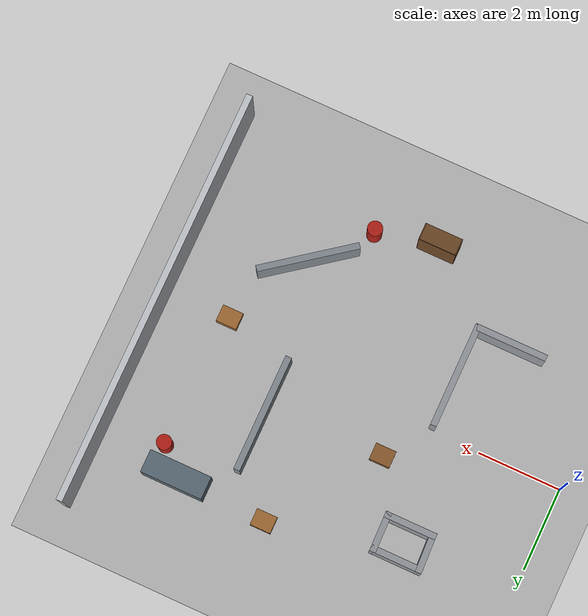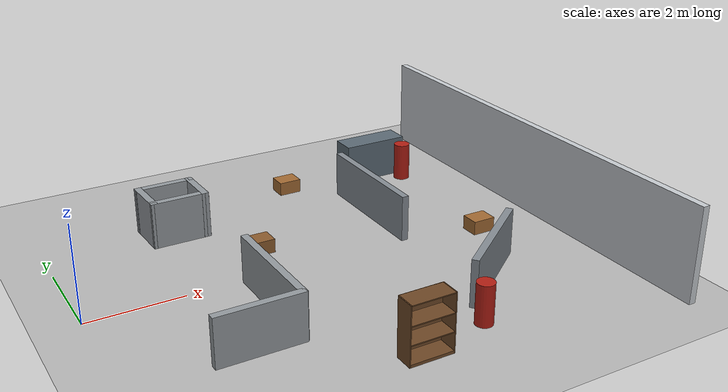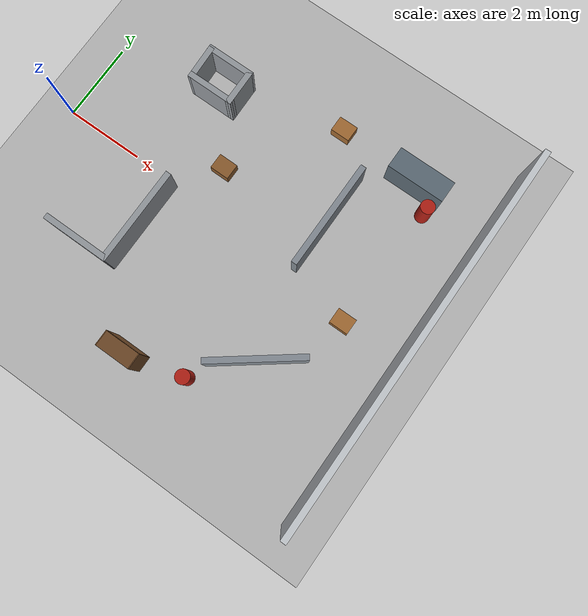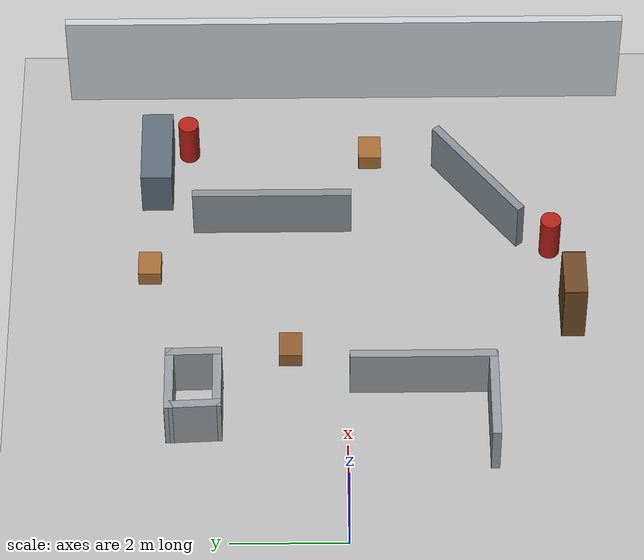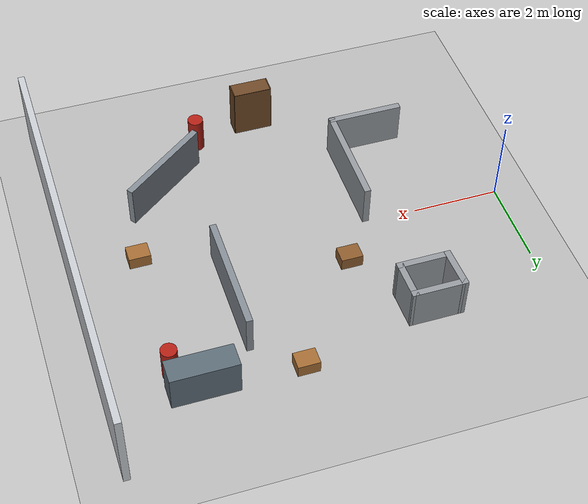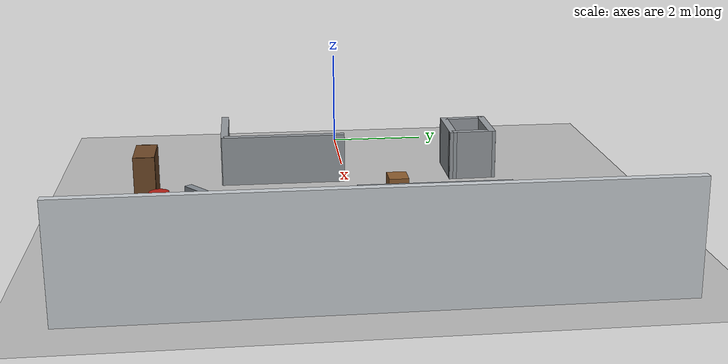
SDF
<sdf version="1.6">
 <world name="default">
  <model name="ground_plane">
   <static>true</static>
   <link name="link">
    <collision name="collision">
     <geometry><plane><normal>0 0 1</normal><size>100 100</size></plane></geometry>
     <surface><friction><ode><mu>100</mu><mu2>50</mu2></ode></friction></surface>
    </collision>
    <visual name="visual">
     <cast_shadows>false</cast_shadows>
     <geometry><plane><normal>0 0 1</normal><size>100 100</size></plane></geometry>
     <material><ambient>0.72 0.72 0.72 1</ambient><diffuse>0.72 0.72 0.72 1</diffuse></material>
    </visual>
   </link>
  </model>
  <model name="boundary_wall_east">
   <static>true</static>
   <pose>10 0 1 0 0 -1.5707963</pose>
   <link name="link">
    <collision name="collision">
     <geometry><box><size>10 0.15 2</size></box></geometry>
     <surface>
      <friction>
       <ode><mu>1</mu><mu2>1</mu2><fdir1>0 0 0</fdir1><slip1>0</slip1><slip2>0</slip2></ode>
       <torsional>
        <coefficient>1</coefficient>
        <patch_radius>0</patch_radius>
        <surface_radius>0</surface_radius>
        <use_patch_radius>1</use_patch_radius>
        <ode><slip>0</slip></ode>
       </torsional>
      </friction>
      <bounce><restitution_coefficient>0</restitution_coefficient><threshold>1e+06</threshold></bounce>
      <contact>
       <collide_without_contact>0</collide_without_contact>
       <collide_without_contact_bitmask>1</collide_without_contact_bitmask>
       <collide_bitmask>1</collide_bitmask>
       <ode>
        <soft_cfm>0</soft_cfm>
        <soft_erp>0.2</soft_erp>
        <kp>1e+13</kp>
        <kd>1</kd>
        <max_vel>0.01</max_vel>
        <min_depth>0</min_depth>
       </ode>
       <bullet>
        <split_impulse>1</split_impulse>
        <split_impulse_penetration_threshold>-0.01</split_impulse_penetration_threshold>
        <soft_cfm>0</soft_cfm>
        <soft_erp>0.2</soft_erp>
        <kp>1e+13</kp>
        <kd>1</kd>
       </bullet>
      </contact>
     </surface>
    </collision>
    <visual name="visual">
     <geometry><box><size>10 0.15 2</size></box></geometry>
     <material><ambient>0.78 0.8 0.82 1</ambient><diffuse>0.78 0.8 0.82 1</diffuse></material>
    </visual>
   </link>
  </model>
  <model name="bookshelf_link_back">
   <static>true</static>
   <pose>4.78412 -3.73336 0.6 0 0 0</pose>
   <link name="link">
    <collision name="collision">
     <geometry><box><size>0.9 0.01 1.2</size></box></geometry>
     <surface>
      <friction>
       <ode><mu>1</mu><mu2>1</mu2><fdir1>0 0 0</fdir1><slip1>0</slip1><slip2>0</slip2></ode>
       <torsional>
        <coefficient>1</coefficient>
        <patch_radius>0</patch_radius>
        <surface_radius>0</surface_radius>
        <use_patch_radius>1</use_patch_radius>
        <ode><slip>0</slip></ode>
       </torsional>
      </friction>
      <bounce><restitution_coefficient>0</restitution_coefficient><threshold>1e+06</threshold></bounce>
      <contact>
       <collide_without_contact>0</collide_without_contact>
       <collide_without_contact_bitmask>1</collide_without_contact_bitmask>
       <collide_bitmask>1</collide_bitmask>
       <ode>
        <soft_cfm>0</soft_cfm>
        <soft_erp>0.2</soft_erp>
        <kp>1e+13</kp>
        <kd>1</kd>
        <max_vel>0.01</max_vel>
        <min_depth>0</min_depth>
       </ode>
       <bullet>
        <split_impulse>1</split_impulse>
        <split_impulse_penetration_threshold>-0.01</split_impulse_penetration_threshold>
        <soft_cfm>0</soft_cfm>
        <soft_erp>0.2</soft_erp>
        <kp>1e+13</kp>
        <kd>1</kd>
       </bullet>
      </contact>
     </surface>
    </collision>
    <visual name="visual">
     <geometry><box><size>0.9 0.01 1.2</size></box></geometry>
     <material><ambient>0.43 0.28 0.15 1</ambient><diffuse>0.43 0.28 0.15 1</diffuse></material>
    </visual>
   </link>
  </model>
  <model name="bookshelf_link_bottom">
   <static>true</static>
   <pose>4.78412 -3.93336 0.03 0 0 0</pose>
   <link name="link">
    <collision name="collision">
     <geometry><box><size>0.88 0.4 0.06</size></box></geometry>
     <surface>
      <friction>
       <ode><mu>1</mu><mu2>1</mu2><fdir1>0 0 0</fdir1><slip1>0</slip1><slip2>0</slip2></ode>
       <torsional>
        <coefficient>1</coefficient>
        <patch_radius>0</patch_radius>
        <surface_radius>0</surface_radius>
        <use_patch_radius>1</use_patch_radius>
        <ode><slip>0</slip></ode>
       </torsional>
      </friction>
      <bounce><restitution_coefficient>0</restitution_coefficient><threshold>1e+06</threshold></bounce>
      <contact>
       <collide_without_contact>0</collide_without_contact>
       <collide_without_contact_bitmask>1</collide_without_contact_bitmask>
       <collide_bitmask>1</collide_bitmask>
       <ode>
        <soft_cfm>0</soft_cfm>
        <soft_erp>0.2</soft_erp>
        <kp>1e+13</kp>
        <kd>1</kd>
        <max_vel>0.01</max_vel>
        <min_depth>0</min_depth>
       </ode>
       <bullet>
        <split_impulse>1</split_impulse>
        <split_impulse_penetration_threshold>-0.01</split_impulse_penetration_threshold>
        <soft_cfm>0</soft_cfm>
        <soft_erp>0.2</soft_erp>
        <kp>1e+13</kp>
        <kd>1</kd>
       </bullet>
      </contact>
     </surface>
    </collision>
    <visual name="visual">
     <geometry><box><size>0.88 0.4 0.06</size></box></geometry>
     <material><ambient>0.43 0.28 0.15 1</ambient><diffuse>0.43 0.28 0.15 1</diffuse></material>
    </visual>
   </link>
  </model>
  <model name="bookshelf_link_high_shelf">
   <static>true</static>
   <pose>4.78412 -3.93336 0.8 0 0 0</pose>
   <link name="link">
    <collision name="collision">
     <geometry><box><size>0.88 0.4 0.02</size></box></geometry>
     <surface>
      <friction>
       <ode><mu>1</mu><mu2>1</mu2><fdir1>0 0 0</fdir1><slip1>0</slip1><slip2>0</slip2></ode>
       <torsional>
        <coefficient>1</coefficient>
        <patch_radius>0</patch_radius>
        <surface_radius>0</surface_radius>
        <use_patch_radius>1</use_patch_radius>
        <ode><slip>0</slip></ode>
       </torsional>
      </friction>
      <bounce><restitution_coefficient>0</restitution_coefficient><threshold>1e+06</threshold></bounce>
      <contact>
       <collide_without_contact>0</collide_without_contact>
       <collide_without_contact_bitmask>1</collide_without_contact_bitmask>
       <collide_bitmask>1</collide_bitmask>
       <ode>
        <soft_cfm>0</soft_cfm>
        <soft_erp>0.2</soft_erp>
        <kp>1e+13</kp>
        <kd>1</kd>
        <max_vel>0.01</max_vel>
        <min_depth>0</min_depth>
       </ode>
       <bullet>
        <split_impulse>1</split_impulse>
        <split_impulse_penetration_threshold>-0.01</split_impulse_penetration_threshold>
        <soft_cfm>0</soft_cfm>
        <soft_erp>0.2</soft_erp>
        <kp>1e+13</kp>
        <kd>1</kd>
       </bullet>
      </contact>
     </surface>
    </collision>
    <visual name="visual">
     <geometry><box><size>0.88 0.4 0.02</size></box></geometry>
     <material><ambient>0.43 0.28 0.15 1</ambient><diffuse>0.43 0.28 0.15 1</diffuse></material>
    </visual>
   </link>
  </model>
  <model name="bookshelf_link_left_side">
   <static>true</static>
   <pose>5.23412 -3.93336 0.6 0 0 0</pose>
   <link name="link">
    <collision name="collision">
     <geometry><box><size>0.02 0.4 1.2</size></box></geometry>
     <surface>
      <friction>
       <ode><mu>1</mu><mu2>1</mu2><fdir1>0 0 0</fdir1><slip1>0</slip1><slip2>0</slip2></ode>
       <torsional>
        <coefficient>1</coefficient>
        <patch_radius>0</patch_radius>
        <surface_radius>0</surface_radius>
        <use_patch_radius>1</use_patch_radius>
        <ode><slip>0</slip></ode>
       </torsional>
      </friction>
      <bounce><restitution_coefficient>0</restitution_coefficient><threshold>1e+06</threshold></bounce>
      <contact>
       <collide_without_contact>0</collide_without_contact>
       <collide_without_contact_bitmask>1</collide_without_contact_bitmask>
       <collide_bitmask>1</collide_bitmask>
       <ode>
        <soft_cfm>0</soft_cfm>
        <soft_erp>0.2</soft_erp>
        <kp>1e+13</kp>
        <kd>1</kd>
        <max_vel>0.01</max_vel>
        <min_depth>0</min_depth>
       </ode>
       <bullet>
        <split_impulse>1</split_impulse>
        <split_impulse_penetration_threshold>-0.01</split_impulse_penetration_threshold>
        <soft_cfm>0</soft_cfm>
        <soft_erp>0.2</soft_erp>
        <kp>1e+13</kp>
        <kd>1</kd>
       </bullet>
      </contact>
     </surface>
    </collision>
    <visual name="visual">
     <geometry><box><size>0.02 0.4 1.2</size></box></geometry>
     <material><ambient>0.43 0.28 0.15 1</ambient><diffuse>0.43 0.28 0.15 1</diffuse></material>
    </visual>
   </link>
  </model>
  <model name="bookshelf_link_low_shelf">
   <static>true</static>
   <pose>4.78412 -3.93336 0.43 0 0 0</pose>
   <link name="link">
    <collision name="collision">
     <geometry><box><size>0.88 0.4 0.02</size></box></geometry>
     <surface>
      <friction>
       <ode><mu>1</mu><mu2>1</mu2><fdir1>0 0 0</fdir1><slip1>0</slip1><slip2>0</slip2></ode>
       <torsional>
        <coefficient>1</coefficient>
        <patch_radius>0</patch_radius>
        <surface_radius>0</surface_radius>
        <use_patch_radius>1</use_patch_radius>
        <ode><slip>0</slip></ode>
       </torsional>
      </friction>
      <bounce><restitution_coefficient>0</restitution_coefficient><threshold>1e+06</threshold></bounce>
      <contact>
       <collide_without_contact>0</collide_without_contact>
       <collide_without_contact_bitmask>1</collide_without_contact_bitmask>
       <collide_bitmask>1</collide_bitmask>
       <ode>
        <soft_cfm>0</soft_cfm>
        <soft_erp>0.2</soft_erp>
        <kp>1e+13</kp>
        <kd>1</kd>
        <max_vel>0.01</max_vel>
        <min_depth>0</min_depth>
       </ode>
       <bullet>
        <split_impulse>1</split_impulse>
        <split_impulse_penetration_threshold>-0.01</split_impulse_penetration_threshold>
        <soft_cfm>0</soft_cfm>
        <soft_erp>0.2</soft_erp>
        <kp>1e+13</kp>
        <kd>1</kd>
       </bullet>
      </contact>
     </surface>
    </collision>
    <visual name="visual">
     <geometry><box><size>0.88 0.4 0.02</size></box></geometry>
     <material><ambient>0.43 0.28 0.15 1</ambient><diffuse>0.43 0.28 0.15 1</diffuse></material>
    </visual>
   </link>
  </model>
  <model name="bookshelf_link_right_side">
   <static>true</static>
   <pose>4.33412 -3.93336 0.6 0 0 0</pose>
   <link name="link">
    <collision name="collision">
     <geometry><box><size>0.02 0.4 1.2</size></box></geometry>
     <surface>
      <friction>
       <ode><mu>1</mu><mu2>1</mu2><fdir1>0 0 0</fdir1><slip1>0</slip1><slip2>0</slip2></ode>
       <torsional>
        <coefficient>1</coefficient>
        <patch_radius>0</patch_radius>
        <surface_radius>0</surface_radius>
        <use_patch_radius>1</use_patch_radius>
        <ode><slip>0</slip></ode>
       </torsional>
      </friction>
      <bounce><restitution_coefficient>0</restitution_coefficient><threshold>1e+06</threshold></bounce>
      <contact>
       <collide_without_contact>0</collide_without_contact>
       <collide_without_contact_bitmask>1</collide_without_contact_bitmask>
       <collide_bitmask>1</collide_bitmask>
       <ode>
        <soft_cfm>0</soft_cfm>
        <soft_erp>0.2</soft_erp>
        <kp>1e+13</kp>
        <kd>1</kd>
        <max_vel>0.01</max_vel>
        <min_depth>0</min_depth>
       </ode>
       <bullet>
        <split_impulse>1</split_impulse>
        <split_impulse_penetration_threshold>-0.01</split_impulse_penetration_threshold>
        <soft_cfm>0</soft_cfm>
        <soft_erp>0.2</soft_erp>
        <kp>1e+13</kp>
        <kd>1</kd>
       </bullet>
      </contact>
     </surface>
    </collision>
    <visual name="visual">
     <geometry><box><size>0.02 0.4 1.2</size></box></geometry>
     <material><ambient>0.43 0.28 0.15 1</ambient><diffuse>0.43 0.28 0.15 1</diffuse></material>
    </visual>
   </link>
  </model>
  <model name="bookshelf_link_top">
   <static>true</static>
   <pose>4.78412 -3.93336 1.19 0 0 0</pose>
   <link name="link">
    <collision name="collision">
     <geometry><box><size>0.88 0.4 0.02</size></box></geometry>
     <surface>
      <friction>
       <ode><mu>1</mu><mu2>1</mu2><fdir1>0 0 0</fdir1><slip1>0</slip1><slip2>0</slip2></ode>
       <torsional>
        <coefficient>1</coefficient>
        <patch_radius>0</patch_radius>
        <surface_radius>0</surface_radius>
        <use_patch_radius>1</use_patch_radius>
        <ode><slip>0</slip></ode>
       </torsional>
      </friction>
      <bounce><restitution_coefficient>0</restitution_coefficient><threshold>1e+06</threshold></bounce>
      <contact>
       <collide_without_contact>0</collide_without_contact>
       <collide_without_contact_bitmask>1</collide_without_contact_bitmask>
       <collide_bitmask>1</collide_bitmask>
       <ode>
        <soft_cfm>0</soft_cfm>
        <soft_erp>0.2</soft_erp>
        <kp>1e+13</kp>
        <kd>1</kd>
        <max_vel>0.01</max_vel>
        <min_depth>0</min_depth>
       </ode>
       <bullet>
        <split_impulse>1</split_impulse>
        <split_impulse_penetration_threshold>-0.01</split_impulse_penetration_threshold>
        <soft_cfm>0</soft_cfm>
        <soft_erp>0.2</soft_erp>
        <kp>1e+13</kp>
        <kd>1</kd>
       </bullet>
      </contact>
     </surface>
    </collision>
    <visual name="visual">
     <geometry><box><size>0.88 0.4 0.02</size></box></geometry>
     <material><ambient>0.43 0.28 0.15 1</ambient><diffuse>0.43 0.28 0.15 1</diffuse></material>
    </visual>
   </link>
  </model>
  <model name="box_Wall_15_Wall_15_Collision">
   <static>true</static>
   <pose>2.72456 3.02888 0.5 0 0 0</pose>
   <link name="link">
    <collision name="collision">
     <geometry><box><size>1.2678 0.15 1</size></box></geometry>
     <surface>
      <friction>
       <ode><mu>1</mu><mu2>1</mu2><fdir1>0 0 0</fdir1><slip1>0</slip1><slip2>0</slip2></ode>
       <torsional>
        <coefficient>1</coefficient>
        <patch_radius>0</patch_radius>
        <surface_radius>0</surface_radius>
        <use_patch_radius>1</use_patch_radius>
        <ode><slip>0</slip></ode>
       </torsional>
      </friction>
      <bounce><restitution_coefficient>0</restitution_coefficient><threshold>1e+06</threshold></bounce>
      <contact>
       <collide_without_contact>0</collide_without_contact>
       <collide_without_contact_bitmask>1</collide_without_contact_bitmask>
       <collide_bitmask>1</collide_bitmask>
       <ode>
        <soft_cfm>0</soft_cfm>
        <soft_erp>0.2</soft_erp>
        <kp>1e+13</kp>
        <kd>1</kd>
        <max_vel>0.01</max_vel>
        <min_depth>0</min_depth>
       </ode>
       <bullet>
        <split_impulse>1</split_impulse>
        <split_impulse_penetration_threshold>-0.01</split_impulse_penetration_threshold>
        <soft_cfm>0</soft_cfm>
        <soft_erp>0.2</soft_erp>
        <kp>1e+13</kp>
        <kd>1</kd>
       </bullet>
      </contact>
     </surface>
    </collision>
    <visual name="visual">
     <geometry><box><size>1.2678 0.15 1</size></box></geometry>
     <material><ambient>0.58 0.6 0.62 1</ambient><diffuse>0.58 0.6 0.62 1</diffuse></material>
    </visual>
   </link>
  </model>
  <model name="box_Wall_16_Wall_16_Collision">
   <static>true</static>
   <pose>3.29206 2.62138 0.5 0 0 -1.54994</pose>
   <link name="link">
    <collision name="collision">
     <geometry><box><size>0.965005 0.15 1</size></box></geometry>
     <surface>
      <friction>
       <ode><mu>1</mu><mu2>1</mu2><fdir1>0 0 0</fdir1><slip1>0</slip1><slip2>0</slip2></ode>
       <torsional>
        <coefficient>1</coefficient>
        <patch_radius>0</patch_radius>
        <surface_radius>0</surface_radius>
        <use_patch_radius>1</use_patch_radius>
        <ode><slip>0</slip></ode>
       </torsional>
      </friction>
      <bounce><restitution_coefficient>0</restitution_coefficient><threshold>1e+06</threshold></bounce>
      <contact>
       <collide_without_contact>0</collide_without_contact>
       <collide_without_contact_bitmask>1</collide_without_contact_bitmask>
       <collide_bitmask>1</collide_bitmask>
       <ode>
        <soft_cfm>0</soft_cfm>
        <soft_erp>0.2</soft_erp>
        <kp>1e+13</kp>
        <kd>1</kd>
        <max_vel>0.01</max_vel>
        <min_depth>0</min_depth>
       </ode>
       <bullet>
        <split_impulse>1</split_impulse>
        <split_impulse_penetration_threshold>-0.01</split_impulse_penetration_threshold>
        <soft_cfm>0</soft_cfm>
        <soft_erp>0.2</soft_erp>
        <kp>1e+13</kp>
        <kd>1</kd>
       </bullet>
      </contact>
     </surface>
    </collision>
    <visual name="visual">
     <geometry><box><size>0.965005 0.15 1</size></box></geometry>
     <material><ambient>0.58 0.6 0.62 1</ambient><diffuse>0.58 0.6 0.62 1</diffuse></material>
    </visual>
   </link>
  </model>
  <model name="box_Wall_17_Wall_17_Collision">
   <static>true</static>
   <pose>2.75056 2.21388 0.5 0 0 3.14159</pose>
   <link name="link">
    <collision name="collision">
     <geometry><box><size>1.25 0.15 1</size></box></geometry>
     <surface>
      <friction>
       <ode><mu>1</mu><mu2>1</mu2><fdir1>0 0 0</fdir1><slip1>0</slip1><slip2>0</slip2></ode>
       <torsional>
        <coefficient>1</coefficient>
        <patch_radius>0</patch_radius>
        <surface_radius>0</surface_radius>
        <use_patch_radius>1</use_patch_radius>
        <ode><slip>0</slip></ode>
       </torsional>
      </friction>
      <bounce><restitution_coefficient>0</restitution_coefficient><threshold>1e+06</threshold></bounce>
      <contact>
       <collide_without_contact>0</collide_without_contact>
       <collide_without_contact_bitmask>1</collide_without_contact_bitmask>
       <collide_bitmask>1</collide_bitmask>
       <ode>
        <soft_cfm>0</soft_cfm>
        <soft_erp>0.2</soft_erp>
        <kp>1e+13</kp>
        <kd>1</kd>
        <max_vel>0.01</max_vel>
        <min_depth>0</min_depth>
       </ode>
       <bullet>
        <split_impulse>1</split_impulse>
        <split_impulse_penetration_threshold>-0.01</split_impulse_penetration_threshold>
        <soft_cfm>0</soft_cfm>
        <soft_erp>0.2</soft_erp>
        <kp>1e+13</kp>
        <kd>1</kd>
       </bullet>
      </contact>
     </surface>
    </collision>
    <visual name="visual">
     <geometry><box><size>1.25 0.15 1</size></box></geometry>
     <material><ambient>0.58 0.6 0.62 1</ambient><diffuse>0.58 0.6 0.62 1</diffuse></material>
    </visual>
   </link>
  </model>
  <model name="box_Wall_18_Wall_18_Collision">
   <static>true</static>
   <pose>2.18306 2.62138 0.5 0 0 1.61372</pose>
   <link name="link">
    <collision name="collision">
     <geometry><box><size>0.965005 0.15 1</size></box></geometry>
     <surface>
      <friction>
       <ode><mu>1</mu><mu2>1</mu2><fdir1>0 0 0</fdir1><slip1>0</slip1><slip2>0</slip2></ode>
       <torsional>
        <coefficient>1</coefficient>
        <patch_radius>0</patch_radius>
        <surface_radius>0</surface_radius>
        <use_patch_radius>1</use_patch_radius>
        <ode><slip>0</slip></ode>
       </torsional>
      </friction>
      <bounce><restitution_coefficient>0</restitution_coefficient><threshold>1e+06</threshold></bounce>
      <contact>
       <collide_without_contact>0</collide_without_contact>
       <collide_without_contact_bitmask>1</collide_without_contact_bitmask>
       <collide_bitmask>1</collide_bitmask>
       <ode>
        <soft_cfm>0</soft_cfm>
        <soft_erp>0.2</soft_erp>
        <kp>1e+13</kp>
        <kd>1</kd>
        <max_vel>0.01</max_vel>
        <min_depth>0</min_depth>
       </ode>
       <bullet>
        <split_impulse>1</split_impulse>
        <split_impulse_penetration_threshold>-0.01</split_impulse_penetration_threshold>
        <soft_cfm>0</soft_cfm>
        <soft_erp>0.2</soft_erp>
        <kp>1e+13</kp>
        <kd>1</kd>
       </bullet>
      </contact>
     </surface>
    </collision>
    <visual name="visual">
     <geometry><box><size>0.965005 0.15 1</size></box></geometry>
     <material><ambient>0.58 0.6 0.62 1</ambient><diffuse>0.58 0.6 0.62 1</diffuse></material>
    </visual>
   </link>
  </model>
  <model name="box_Wall_28_Wall_28_Collision">
   <static>true</static>
   <pose>2.38869 -2.48059 0.5 0 0 0</pose>
   <link name="link">
    <collision name="collision">
     <geometry><box><size>1.75 0.15 1</size></box></geometry>
     <surface>
      <friction>
       <ode><mu>1</mu><mu2>1</mu2><fdir1>0 0 0</fdir1><slip1>0</slip1><slip2>0</slip2></ode>
       <torsional>
        <coefficient>1</coefficient>
        <patch_radius>0</patch_radius>
        <surface_radius>0</surface_radius>
        <use_patch_radius>1</use_patch_radius>
        <ode><slip>0</slip></ode>
       </torsional>
      </friction>
      <bounce><restitution_coefficient>0</restitution_coefficient><threshold>1e+06</threshold></bounce>
      <contact>
       <collide_without_contact>0</collide_without_contact>
       <collide_without_contact_bitmask>1</collide_without_contact_bitmask>
       <collide_bitmask>1</collide_bitmask>
       <ode>
        <soft_cfm>0</soft_cfm>
        <soft_erp>0.2</soft_erp>
        <kp>1e+13</kp>
        <kd>1</kd>
        <max_vel>0.01</max_vel>
        <min_depth>0</min_depth>
       </ode>
       <bullet>
        <split_impulse>1</split_impulse>
        <split_impulse_penetration_threshold>-0.01</split_impulse_penetration_threshold>
        <soft_cfm>0</soft_cfm>
        <soft_erp>0.2</soft_erp>
        <kp>1e+13</kp>
        <kd>1</kd>
       </bullet>
      </contact>
     </surface>
    </collision>
    <visual name="visual">
     <geometry><box><size>1.75 0.15 1</size></box></geometry>
     <material><ambient>0.58 0.6 0.62 1</ambient><diffuse>0.58 0.6 0.62 1</diffuse></material>
    </visual>
   </link>
  </model>
  <model name="box_Wall_29_Wall_29_Collision">
   <static>true</static>
   <pose>3.20618 -1.2881 0.5 0 0 1.5708</pose>
   <link name="link">
    <collision name="collision">
     <geometry><box><size>2.5 0.15 1</size></box></geometry>
     <surface>
      <friction>
       <ode><mu>1</mu><mu2>1</mu2><fdir1>0 0 0</fdir1><slip1>0</slip1><slip2>0</slip2></ode>
       <torsional>
        <coefficient>1</coefficient>
        <patch_radius>0</patch_radius>
        <surface_radius>0</surface_radius>
        <use_patch_radius>1</use_patch_radius>
        <ode><slip>0</slip></ode>
       </torsional>
      </friction>
      <bounce><restitution_coefficient>0</restitution_coefficient><threshold>1e+06</threshold></bounce>
      <contact>
       <collide_without_contact>0</collide_without_contact>
       <collide_without_contact_bitmask>1</collide_without_contact_bitmask>
       <collide_bitmask>1</collide_bitmask>
       <ode>
        <soft_cfm>0</soft_cfm>
        <soft_erp>0.2</soft_erp>
        <kp>1e+13</kp>
        <kd>1</kd>
        <max_vel>0.01</max_vel>
        <min_depth>0</min_depth>
       </ode>
       <bullet>
        <split_impulse>1</split_impulse>
        <split_impulse_penetration_threshold>-0.01</split_impulse_penetration_threshold>
        <soft_cfm>0</soft_cfm>
        <soft_erp>0.2</soft_erp>
        <kp>1e+13</kp>
        <kd>1</kd>
       </bullet>
      </contact>
     </surface>
    </collision>
    <visual name="visual">
     <geometry><box><size>2.5 0.15 1</size></box></geometry>
     <material><ambient>0.58 0.6 0.62 1</ambient><diffuse>0.58 0.6 0.62 1</diffuse></material>
    </visual>
   </link>
  </model>
  <model name="cardboard_box_0">
   <static>true</static>
   <pose>3.96847 0.977565 0.15 0 0 0</pose>
   <link name="link">
    <collision name="collision">
     <geometry><box><size>0.5 0.4 0.3</size></box></geometry>
     <surface>
      <friction><ode><mu>1</mu><mu2>1</mu2></ode></friction>
      <contact><ode><kp>1e+07</kp><kd>1</kd><min_depth>0.001</min_depth><max_vel>0.1</max_vel></ode></contact>
     </surface>
    </collision>
    <visual name="visual">
     <geometry><box><size>0.5 0.4 0.3</size></box></geometry>
     <material><ambient>0.55 0.36 0.18 1</ambient><diffuse>0.55 0.36 0.18 1</diffuse></material>
    </visual>
   </link>
  </model>
  <model name="test_wall_right_room_partition">
   <static>true</static>
   <pose>6.8 1.3 0.5 0 0 1.5707963</pose>
   <link name="link">
    <collision name="collision">
     <geometry><box><size>2.8 0.15 1</size></box></geometry>
     <surface>
      <friction>
       <ode><mu>1</mu><mu2>1</mu2><fdir1>0 0 0</fdir1><slip1>0</slip1><slip2>0</slip2></ode>
       <torsional>
        <coefficient>1</coefficient>
        <patch_radius>0</patch_radius>
        <surface_radius>0</surface_radius>
        <use_patch_radius>1</use_patch_radius>
        <ode><slip>0</slip></ode>
       </torsional>
      </friction>
      <bounce><restitution_coefficient>0</restitution_coefficient><threshold>1e+06</threshold></bounce>
      <contact>
       <collide_without_contact>0</collide_without_contact>
       <collide_without_contact_bitmask>1</collide_without_contact_bitmask>
       <collide_bitmask>1</collide_bitmask>
       <ode>
        <soft_cfm>0</soft_cfm>
        <soft_erp>0.2</soft_erp>
        <kp>1e+13</kp>
        <kd>1</kd>
        <max_vel>0.01</max_vel>
        <min_depth>0</min_depth>
       </ode>
       <bullet>
        <split_impulse>1</split_impulse>
        <split_impulse_penetration_threshold>-0.01</split_impulse_penetration_threshold>
        <soft_cfm>0</soft_cfm>
        <soft_erp>0.2</soft_erp>
        <kp>1e+13</kp>
        <kd>1</kd>
       </bullet>
      </contact>
     </surface>
    </collision>
    <visual name="visual">
     <geometry><box><size>2.8 0.15 1</size></box></geometry>
     <material><ambient>0.52 0.55 0.58 1</ambient><diffuse>0.52 0.55 0.58 1</diffuse></material>
    </visual>
   </link>
  </model>
  <model name="test_wall_right_angled">
   <static>true</static>
   <pose>7.35 -2.35 0.5 0 0 0.65</pose>
   <link name="link">
    <collision name="collision">
     <geometry><box><size>2.4 0.15 1</size></box></geometry>
     <surface>
      <friction>
       <ode><mu>1</mu><mu2>1</mu2><fdir1>0 0 0</fdir1><slip1>0</slip1><slip2>0</slip2></ode>
       <torsional>
        <coefficient>1</coefficient>
        <patch_radius>0</patch_radius>
        <surface_radius>0</surface_radius>
        <use_patch_radius>1</use_patch_radius>
        <ode><slip>0</slip></ode>
       </torsional>
      </friction>
      <bounce><restitution_coefficient>0</restitution_coefficient><threshold>1e+06</threshold></bounce>
      <contact>
       <collide_without_contact>0</collide_without_contact>
       <collide_without_contact_bitmask>1</collide_without_contact_bitmask>
       <collide_bitmask>1</collide_bitmask>
       <ode>
        <soft_cfm>0</soft_cfm>
        <soft_erp>0.2</soft_erp>
        <kp>1e+13</kp>
        <kd>1</kd>
        <max_vel>0.01</max_vel>
        <min_depth>0</min_depth>
       </ode>
       <bullet>
        <split_impulse>1</split_impulse>
        <split_impulse_penetration_threshold>-0.01</split_impulse_penetration_threshold>
        <soft_cfm>0</soft_cfm>
        <soft_erp>0.2</soft_erp>
        <kp>1e+13</kp>
        <kd>1</kd>
       </bullet>
      </contact>
     </surface>
    </collision>
    <visual name="visual">
     <geometry><box><size>2.4 0.15 1</size></box></geometry>
     <material><ambient>0.52 0.55 0.58 1</ambient><diffuse>0.52 0.55 0.58 1</diffuse></material>
    </visual>
   </link>
  </model>
  <model name="test_low_cabinet_right">
   <static>true</static>
   <pose>8 3.35 0.45 0 0 0</pose>
   <link name="link">
    <collision name="collision">
     <geometry><box><size>1.5 0.55 0.9</size></box></geometry>
     <surface>
      <friction>
       <ode><mu>1</mu><mu2>1</mu2><fdir1>0 0 0</fdir1><slip1>0</slip1><slip2>0</slip2></ode>
       <torsional>
        <coefficient>1</coefficient>
        <patch_radius>0</patch_radius>
        <surface_radius>0</surface_radius>
        <use_patch_radius>1</use_patch_radius>
        <ode><slip>0</slip></ode>
       </torsional>
      </friction>
      <bounce><restitution_coefficient>0</restitution_coefficient><threshold>1e+06</threshold></bounce>
      <contact>
       <collide_without_contact>0</collide_without_contact>
       <collide_without_contact_bitmask>1</collide_without_contact_bitmask>
       <collide_bitmask>1</collide_bitmask>
       <ode>
        <soft_cfm>0</soft_cfm>
        <soft_erp>0.2</soft_erp>
        <kp>1e+13</kp>
        <kd>1</kd>
        <max_vel>0.01</max_vel>
        <min_depth>0</min_depth>
       </ode>
       <bullet>
        <split_impulse>1</split_impulse>
        <split_impulse_penetration_threshold>-0.01</split_impulse_penetration_threshold>
        <soft_cfm>0</soft_cfm>
        <soft_erp>0.2</soft_erp>
        <kp>1e+13</kp>
        <kd>1</kd>
       </bullet>
      </contact>
     </surface>
    </collision>
    <visual name="visual">
     <geometry><box><size>1.5 0.55 0.9</size></box></geometry>
     <material><ambient>0.36 0.42 0.46 1</ambient><diffuse>0.36 0.42 0.46 1</diffuse></material>
    </visual>
   </link>
  </model>
  <model name="test_cardboard_box_6">
   <static>true</static>
   <pose>5.8 3.45 0.15 0 0 0</pose>
   <link name="link">
    <collision name="collision">
     <geometry><box><size>0.5 0.4 0.3</size></box></geometry>
     <surface>
      <friction><ode><mu>1</mu><mu2>1</mu2></ode></friction>
      <contact><ode><kp>1e+07</kp><kd>1</kd><min_depth>0.001</min_depth><max_vel>0.1</max_vel></ode></contact>
     </surface>
    </collision>
    <visual name="visual">
     <geometry><box><size>0.5 0.4 0.3</size></box></geometry>
     <material><ambient>0.64 0.42 0.2 1</ambient><diffuse>0.64 0.42 0.2 1</diffuse></material>
    </visual>
   </link>
  </model>
  <model name="test_cardboard_box_7">
   <static>true</static>
   <pose>8.45 -0.45 0.15 0 0 0</pose>
   <link name="link">
    <collision name="collision">
     <geometry><box><size>0.5 0.4 0.3</size></box></geometry>
     <surface>
      <friction><ode><mu>1</mu><mu2>1</mu2></ode></friction>
      <contact><ode><kp>1e+07</kp><kd>1</kd><min_depth>0.001</min_depth><max_vel>0.1</max_vel></ode></contact>
     </surface>
    </collision>
    <visual name="visual">
     <geometry><box><size>0.5 0.4 0.3</size></box></geometry>
     <material><ambient>0.64 0.42 0.2 1</ambient><diffuse>0.64 0.42 0.2 1</diffuse></material>
    </visual>
   </link>
  </model>
  <model name="test_fire_hydrant_right_lower">
   <static>true</static>
   <pose>6.25 -3.6 0.425 0 0 0</pose>
   <link name="link">
    <collision name="collision">
     <geometry><cylinder><radius>0.18</radius><length>0.85</length></cylinder></geometry>
     <surface>
      <friction>
       <ode><mu>1</mu><mu2>1</mu2><fdir1>0 0 0</fdir1><slip1>0</slip1><slip2>0</slip2></ode>
       <torsional>
        <coefficient>1</coefficient>
        <patch_radius>0</patch_radius>
        <surface_radius>0</surface_radius>
        <use_patch_radius>1</use_patch_radius>
        <ode><slip>0</slip></ode>
       </torsional>
      </friction>
      <bounce><restitution_coefficient>0</restitution_coefficient><threshold>1e+06</threshold></bounce>
      <contact>
       <collide_without_contact>0</collide_without_contact>
       <collide_without_contact_bitmask>1</collide_without_contact_bitmask>
       <collide_bitmask>1</collide_bitmask>
       <ode>
        <soft_cfm>0</soft_cfm>
        <soft_erp>0.2</soft_erp>
        <kp>1e+13</kp>
        <kd>1</kd>
        <max_vel>0.01</max_vel>
        <min_depth>0</min_depth>
       </ode>
       <bullet>
        <split_impulse>1</split_impulse>
        <split_impulse_penetration_threshold>-0.01</split_impulse_penetration_threshold>
        <soft_cfm>0</soft_cfm>
        <soft_erp>0.2</soft_erp>
        <kp>1e+13</kp>
        <kd>1</kd>
       </bullet>
      </contact>
     </surface>
    </collision>
    <visual name="visual">
     <geometry><cylinder><radius>0.18</radius><length>0.85</length></cylinder></geometry>
     <material><ambient>0.7 0.12 0.08 1</ambient><diffuse>0.7 0.12 0.08 1</diffuse></material>
    </visual>
   </link>
  </model>
  <model name="test_fire_hydrant_right_upper">
   <static>true</static>
   <pose>8.55 2.8 0.425 0 0 0</pose>
   <link name="link">
    <collision name="collision">
     <geometry><cylinder><radius>0.18</radius><length>0.85</length></cylinder></geometry>
     <surface>
      <friction>
       <ode><mu>1</mu><mu2>1</mu2><fdir1>0 0 0</fdir1><slip1>0</slip1><slip2>0</slip2></ode>
       <torsional>
        <coefficient>1</coefficient>
        <patch_radius>0</patch_radius>
        <surface_radius>0</surface_radius>
        <use_patch_radius>1</use_patch_radius>
        <ode><slip>0</slip></ode>
       </torsional>
      </friction>
      <bounce><restitution_coefficient>0</restitution_coefficient><threshold>1e+06</threshold></bounce>
      <contact>
       <collide_without_contact>0</collide_without_contact>
       <collide_without_contact_bitmask>1</collide_without_contact_bitmask>
       <collide_bitmask>1</collide_bitmask>
       <ode>
        <soft_cfm>0</soft_cfm>
        <soft_erp>0.2</soft_erp>
        <kp>1e+13</kp>
        <kd>1</kd>
        <max_vel>0.01</max_vel>
        <min_depth>0</min_depth>
       </ode>
       <bullet>
        <split_impulse>1</split_impulse>
        <split_impulse_penetration_threshold>-0.01</split_impulse_penetration_threshold>
        <soft_cfm>0</soft_cfm>
        <soft_erp>0.2</soft_erp>
        <kp>1e+13</kp>
        <kd>1</kd>
       </bullet>
      </contact>
     </surface>
    </collision>
    <visual name="visual">
     <geometry><cylinder><radius>0.18</radius><length>0.85</length></cylinder></geometry>
     <material><ambient>0.7 0.12 0.08 1</ambient><diffuse>0.7 0.12 0.08 1</diffuse></material>
    </visual>
   </link>
  </model>
 </world>
</sdf>
